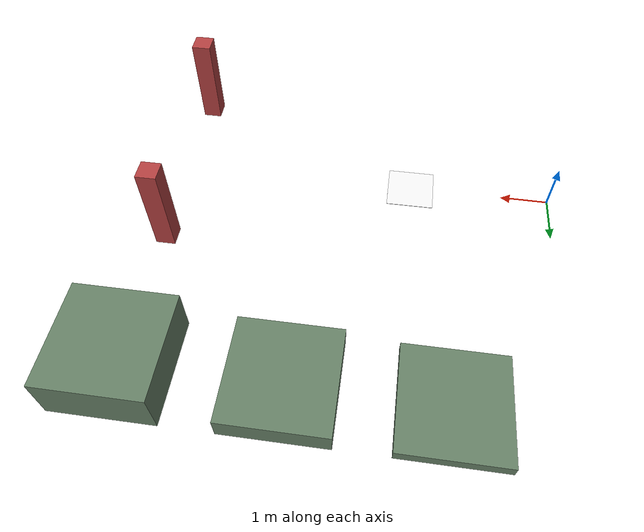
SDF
<sdf version="1.9">
 <world name="uav_arena_outdoor">
  <physics type="ode">
   <max_step_size>0.004</max_step_size>
   <real_time_factor>1.0</real_time_factor>
   <real_time_update_rate>250</real_time_update_rate>
  </physics>
  <plugin name="gz::sim::systems::Physics" filename="gz-sim-physics-system"/>
  <plugin name="gz::sim::systems::UserCommands" filename="gz-sim-user-commands-system"/>
  <plugin name="gz::sim::systems::SceneBroadcaster" filename="gz-sim-scene-broadcaster-system"/>
  <plugin name="gz::sim::systems::Contact" filename="gz-sim-contact-system"/>
  <plugin name="gz::sim::systems::Imu" filename="gz-sim-imu-system"/>
  <plugin name="gz::sim::systems::AirPressure" filename="gz-sim-air-pressure-system"/>
  <plugin name="gz::sim::systems::ApplyLinkWrench" filename="gz-sim-apply-link-wrench-system"/>
  <plugin name="gz::sim::systems::NavSat" filename="gz-sim-navsat-system"/>
  <plugin name="gz::sim::systems::Sensors" filename="gz-sim-sensors-system">
   <render_engine>ogre2</render_engine>
  </plugin>
  <gravity>0 0 -9.8</gravity>
  <magnetic_field>6e-06 2.3e-05 -4.2e-05</magnetic_field>
  <atmosphere type="adiabatic"/>
  <scene>
   <grid>false</grid>
   <ambient>0.4 0.4 0.4 1</ambient>
   <background>0.7 0.7 0.7 1</background>
   <shadows>true</shadows>
  </scene>
  <light name="sunUTC" type="directional">
   <pose>0 0 500 0 -0 0</pose>
   <intensity>1</intensity>
   <direction>0.001 0.625 -0.78</direction>
   <diffuse>0.904 0.904 0.904 1</diffuse>
   <specular>0.271 0.271 0.271 1</specular>
   <attenuation><range>2000</range><linear>0</linear><constant>1</constant><quadratic>0</quadratic></attenuation>
   <spot><inner_angle>0</inner_angle><outer_angle>0</outer_angle><falloff>0</falloff></spot>
  </light>
  <spherical_coordinates>
   <surface_model>EARTH_WGS84</surface_model>
   <world_frame_orientation>ENU</world_frame_orientation>
   <latitude_deg>47.397971057728974</latitude_deg>
   <longitude_deg>8.546163739800146</longitude_deg>
   <elevation>0</elevation>
  </spherical_coordinates>
  <model name="landing_pad">
   <static>true</static>
   <pose>3 0 0.005 0 0 0</pose>
   <link name="link">
    <collision name="collision"><geometry><box><size>1.0 1.0 0.01</size></box></geometry></collision>
    <visual name="visual">
     <geometry><box><size>1.0 1.0 0.01</size></box></geometry>
     <material><ambient>0.9 0.9 0.9 1</ambient><diffuse>0.95 0.95 0.95 1</diffuse></material>
    </visual>
   </link>
  </model>
  <model name="terrain_step_025">
   <static>true</static>
   <pose>2 5 0.125 0 0 0</pose>
   <link name="link">
    <collision name="collision"><geometry><box><size>2 2 0.25</size></box></geometry></collision>
    <visual name="visual">
     <geometry><box><size>2 2 0.25</size></box></geometry>
     <material><ambient>0.35 0.45 0.35 1</ambient><diffuse>0.4 0.5 0.4 1</diffuse></material>
    </visual>
   </link>
  </model>
  <model name="terrain_step_050">
   <static>true</static>
   <pose>5 5 0.25 0 0 0</pose>
   <link name="link">
    <collision name="collision"><geometry><box><size>2 2 0.5</size></box></geometry></collision>
    <visual name="visual">
     <geometry><box><size>2 2 0.5</size></box></geometry>
     <material><ambient>0.35 0.45 0.35 1</ambient><diffuse>0.4 0.5 0.4 1</diffuse></material>
    </visual>
   </link>
  </model>
  <model name="terrain_step_100">
   <static>true</static>
   <pose>8 5 0.5 0 0 0</pose>
   <link name="link">
    <collision name="collision"><geometry><box><size>2 2 1.0</size></box></geometry></collision>
    <visual name="visual">
     <geometry><box><size>2 2 1.0</size></box></geometry>
     <material><ambient>0.35 0.45 0.35 1</ambient><diffuse>0.4 0.5 0.4 1</diffuse></material>
    </visual>
   </link>
  </model>
  <model name="obstacle_pillar_north">
   <static>true</static>
   <pose>8 2 1 0 0 0</pose>
   <link name="link">
    <collision name="collision"><geometry><box><size>0.4 0.4 2.0</size></box></geometry></collision>
    <visual name="visual">
     <geometry><box><size>0.4 0.4 2.0</size></box></geometry>
     <material><ambient>0.6 0.2 0.2 1</ambient><diffuse>0.7 0.25 0.25 1</diffuse></material>
    </visual>
   </link>
  </model>
  <model name="obstacle_pillar_south">
   <static>true</static>
   <pose>8 -2 1 0 0 0</pose>
   <link name="link">
    <collision name="collision"><geometry><box><size>0.4 0.4 2.0</size></box></geometry></collision>
    <visual name="visual">
     <geometry><box><size>0.4 0.4 2.0</size></box></geometry>
     <material><ambient>0.6 0.2 0.2 1</ambient><diffuse>0.7 0.25 0.25 1</diffuse></material>
    </visual>
   </link>
  </model>
 </world>
</sdf>
